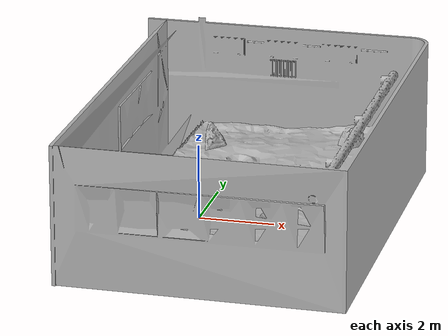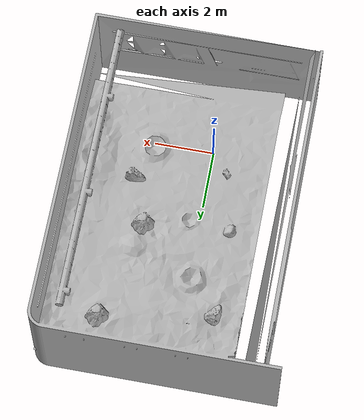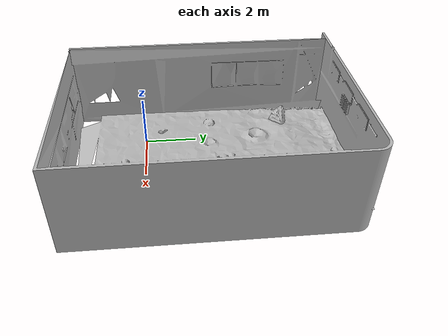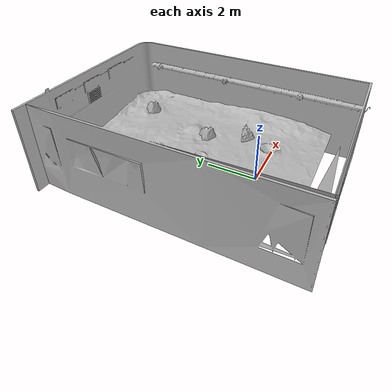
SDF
<?xml version="1.0"?>
<sdf version="1.6">
  <model name="lunalab2024_terrain_v2">
    <pose>-3 -3 0.0 1.5708 0.0 0.0 </pose>
    <static>true</static>

    <link name="lunalab_terrain_v2">

      <collision name="collision">
        <geometry>
          <mesh>
            <uri>model://lunalab2024_terrain_v2/meshes/lunalab-edit-rocks.stl</uri>
          </mesh>
        </geometry>
      </collision>

      <visual name="visual">
        <geometry>
          <mesh>
            <uri>model://lunalab2024_terrain_v2/meshes/lunalab-edit-rocks.obj</uri>
          </mesh>
        </geometry>
      </visual>
    </link>

    <!-- Make it static to avoid unnecessary physics calculations -->
    <static>1</static>
    <!-- Auto disable will not calculate hysics for objects that are currently not being used. -->
    <allow_auto_disable>1</allow_auto_disable>

  </model>
</sdf>
